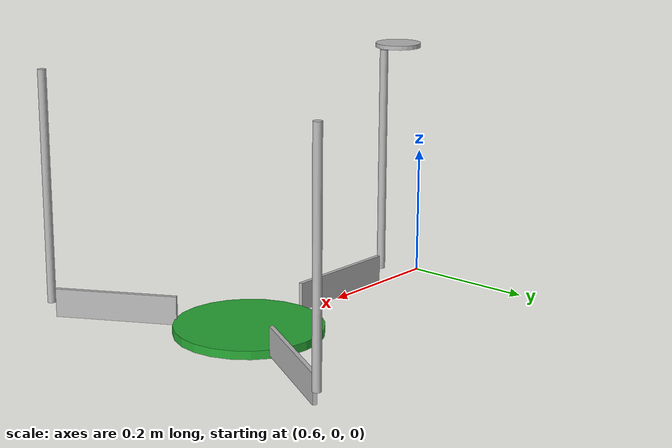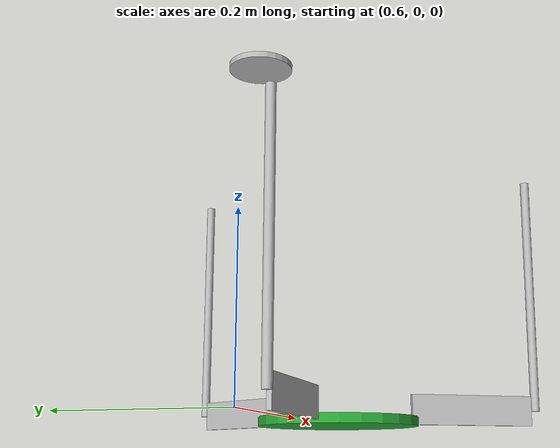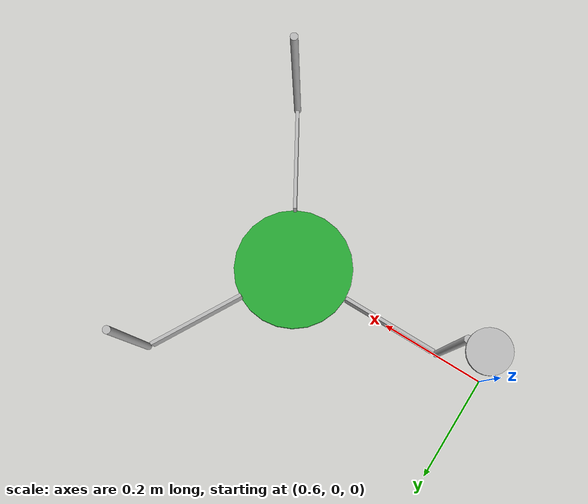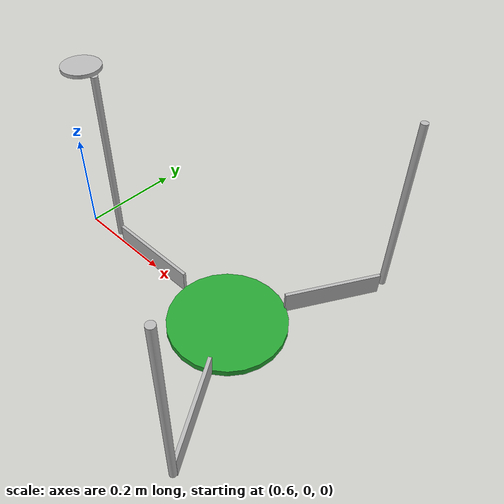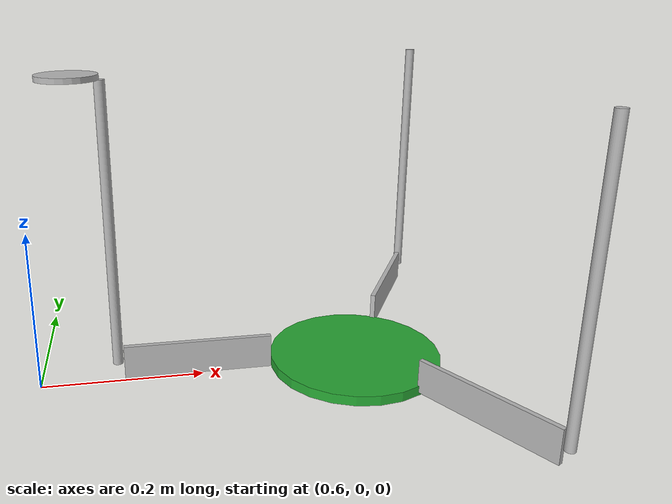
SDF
<sdf version='1.7'>
  <model name='delta'>
    <joint name='world_base_joint' type='fixed'>
      <pose relative_to='__model__'>1 0 0 0 -0 0</pose>
      <parent>world</parent>
      <child>base_link</child>
    </joint>
    <link name='base_link'>
      <pose relative_to='world_base_joint'>0 0 0 0 -0 0</pose>
      <inertial>
        <pose>0 0 0.00635 0 -0 0</pose>
        <mass>12</mass>
        <inertia>
          <ixx>0.0371243</ixx>
          <ixy>0</ixy>
          <ixz>0</ixz>
          <iyy>0.0371243</iyy>
          <iyz>0</iyz>
          <izz>0.073926</izz>
        </inertia>
      </inertial>
      <collision name='base_link_collision'>
        <pose>0 0 0.00635 0 -0 0</pose>
        <geometry>
          <cylinder>
            <length>0.0127</length>
            <radius>0.111</radius>
          </cylinder>
        </geometry>
        <surface>
          <contact>
            <ode/>
          </contact>
          <friction>
            <ode/>
          </friction>
        </surface>
      </collision>
      <visual name='base_link_visual'>
        <pose>0 0 0.00635 0 -0 0</pose>
        <geometry>
          <cylinder>
            <length>0.0127</length>
            <radius>0.111</radius>
          </cylinder>
        </geometry>
        <material>
          <script>
            <name>Gazebo/Green</name>
            <uri>file://media/materials/scripts/gazebo.material</uri>
          </script>
        </material>
      </visual>
    </link>
    <joint name='base_arm_1_joint' type='revolute'>
      <pose relative_to='base_link'>-0.115 0 0.0254 0 -0 0</pose>
      <parent>base_link</parent>
      <child>arm_1_link</child>
      <axis>
        <xyz>0 1 0</xyz>
        <limit>
          <lower>-1.5708</lower>
          <upper>1.5708</upper>
          <effort>100</effort>
          <velocity>100</velocity>
        </limit>
        <dynamics>
          <damping>4</damping>
          <friction>4</friction>
          <spring_reference>0</spring_reference>
          <spring_stiffness>0</spring_stiffness>
        </dynamics>
      </axis>
    </joint>
    <link name='arm_1_link'>
      <pose relative_to='base_arm_1_joint'>0 0 0 0 -0 0</pose>
      <inertial>
        <pose>-0.09 0 0 0 -0 0</pose>
        <mass>6</mass>
        <inertia>
          <ixx>0.000944661</ixx>
          <ixy>0</ixy>
          <ixz>0</ixz>
          <iyy>0.018037</iyy>
          <iyz>0</iyz>
          <izz>0.0171327</izz>
        </inertia>
      </inertial>
      <collision name='arm_1_link_collision'>
        <pose>-0.09 0 0 0 -0 0</pose>
        <geometry>
          <box>
            <size>0.185 0.00635 0.043</size>
          </box>
        </geometry>
      </collision>
      <visual name='arm_1_link_visual'>
        <pose>-0.09 0 0 0 -0 0</pose>
        <geometry>
          <box>
            <size>0.185 0.00635 0.043</size>
          </box>
        </geometry>
      </visual>
    </link>
    <joint name='arm_forearm_1_1_joint' type='revolute'>
      <pose relative_to='arm_1_link'>-0.19 0 0 0 -0 0</pose>
      <parent>arm_1_link</parent>
      <child>virtual_link_1_1</child>
      <axis>
        <xyz>1 0 0</xyz>
        <limit>
          <lower>-0.418879</lower>
          <upper>0.418879</upper>
          <effort>100</effort>
          <velocity>100</velocity>
        </limit>
        <dynamics>
          <damping>0</damping>
          <friction>0.003</friction>
          <spring_reference>0</spring_reference>
          <spring_stiffness>0</spring_stiffness>
        </dynamics>
      </axis>
    </joint>
    <link name='virtual_link_1_1'>
      <pose relative_to='arm_forearm_1_1_joint'>0 0 0 0 -0 0</pose>
      <inertial>
        <pose>0 0 0 0 -0 0</pose>
        <mass>0.1</mass>
        <inertia>
          <ixx>1.66667e-06</ixx>
          <ixy>0</ixy>
          <ixz>0</ixz>
          <iyy>1.66667e-06</iyy>
          <iyz>0</iyz>
          <izz>1.66667e-06</izz>
        </inertia>
      </inertial>
    </link>
    <joint name='arm_forearm_1_2_joint' type='revolute'>
      <pose relative_to='virtual_link_1_1'>0 0 0 0 -0 0</pose>
      <parent>virtual_link_1_1</parent>
      <child>virtual_link_1_2</child>
      <axis>
        <xyz>0 1 0</xyz>
        <limit>
          <lower>-3.14159</lower>
          <upper>3.14159</upper>
          <effort>100</effort>
          <velocity>100</velocity>
        </limit>
        <dynamics>
          <damping>0</damping>
          <friction>0.003</friction>
          <spring_reference>0</spring_reference>
          <spring_stiffness>0</spring_stiffness>
        </dynamics>
      </axis>
    </joint>
    <link name='virtual_link_1_2'>
      <pose relative_to='arm_forearm_1_2_joint'>0 0 0 0 -0 0</pose>
      <inertial>
        <pose>0 0 0 0 -0 0</pose>
        <mass>0.1</mass>
        <inertia>
          <ixx>1.66667e-06</ixx>
          <ixy>0</ixy>
          <ixz>0</ixz>
          <iyy>1.66667e-06</iyy>
          <iyz>0</iyz>
          <izz>1.66667e-06</izz>
        </inertia>
      </inertial>
    </link>
    <joint name='arm_forearm_1_3_joint' type='revolute'>
      <pose relative_to='virtual_link_1_2'>0 0 0 0 -0 0</pose>
      <parent>virtual_link_1_2</parent>
      <child>forearm_1_link</child>
      <axis>
        <xyz>0 0 1</xyz>
        <limit>
          <lower>-0.418879</lower>
          <upper>0.418879</upper>
          <effort>100</effort>
          <velocity>100</velocity>
        </limit>
        <dynamics>
          <damping>0</damping>
          <friction>0.003</friction>
          <spring_reference>0</spring_reference>
          <spring_stiffness>0</spring_stiffness>
        </dynamics>
      </axis>
    </joint>
    <link name='forearm_1_link'>
      <pose relative_to='arm_forearm_1_3_joint'>0 0 0 0 -0 0</pose>
      <inertial>
        <pose>0 0 0 0 -0 0</pose>
        <mass>4</mass>
        <inertia>
          <ixx>0.122513</ixx>
          <ixy>0</ixy>
          <ixz>0</ixz>
          <iyy>0.122513</iyy>
          <iyz>0</iyz>
          <izz>0.245</izz>
        </inertia>
      </inertial>
      <collision name='forearm_1_link_collision'>
        <pose>0 0 0.175 0 -0 0</pose>
        <geometry>
          <cylinder>
            <length>0.35</length>
            <radius>0.00635</radius>
          </cylinder>
        </geometry>
      </collision>
      <visual name='forearm_1_link_visual'>
        <pose>0 0 0.175 0 -0 0</pose>
        <geometry>
          <cylinder>
            <length>0.35</length>
            <radius>0.00635</radius>
          </cylinder>
        </geometry>
      </visual>
    </link>
    <joint name='arm_forearm_1_4_joint' type='revolute'>
      <pose relative_to='forearm_1_link'>0 0 0.35635 0 -0 0</pose>
      <parent>forearm_1_link</parent>
      <child>virtual_link_1_4</child>
      <axis>
        <xyz>1 0 0</xyz>
        <limit>
          <lower>-0.418879</lower>
          <upper>0.418879</upper>
          <effort>100</effort>
          <velocity>100</velocity>
        </limit>
        <dynamics>
          <spring_reference>0</spring_reference>
          <spring_stiffness>0</spring_stiffness>
        </dynamics>
      </axis>
    </joint>
    <link name='virtual_link_1_4'>
      <pose relative_to='arm_forearm_1_4_joint'>0 0 0 0 -0 0</pose>
      <inertial>
        <pose>0 0 0 0 -0 0</pose>
        <mass>0.1</mass>
        <inertia>
          <ixx>1.66667e-06</ixx>
          <ixy>0</ixy>
          <ixz>0</ixz>
          <iyy>1.66667e-06</iyy>
          <iyz>0</iyz>
          <izz>1.66667e-06</izz>
        </inertia>
      </inertial>
    </link>
    <joint name='arm_forearm_1_5_joint' type='revolute'>
      <pose relative_to='virtual_link_1_4'>0 0 0 0 -0 0</pose>
      <parent>virtual_link_1_4</parent>
      <child>virtual_link_1_5</child>
      <axis>
        <xyz>0 1 0</xyz>
        <limit>
          <lower>-3.14159</lower>
          <upper>3.14159</upper>
          <effort>100</effort>
          <velocity>100</velocity>
        </limit>
        <dynamics>
          <spring_reference>0</spring_reference>
          <spring_stiffness>0</spring_stiffness>
        </dynamics>
      </axis>
    </joint>
    <link name='virtual_link_1_5'>
      <pose relative_to='arm_forearm_1_5_joint'>0 0 0 0 -0 0</pose>
      <inertial>
        <pose>0 0 0 0 -0 0</pose>
        <mass>0.1</mass>
        <inertia>
          <ixx>1.66667e-06</ixx>
          <ixy>0</ixy>
          <ixz>0</ixz>
          <iyy>1.66667e-06</iyy>
          <iyz>0</iyz>
          <izz>1.66667e-06</izz>
        </inertia>
      </inertial>
    </link>
    <joint name='arm_forearm_1_6_joint' type='revolute'>
      <pose relative_to='virtual_link_1_5'>-0.035 0 0 0 -0 0</pose>
      <parent>virtual_link_1_5</parent>
      <child>mobile_platform</child>
      <axis>
        <xyz>0 0 1</xyz>
        <limit>
          <lower>-0.418879</lower>
          <upper>0.418879</upper>
          <effort>100</effort>
          <velocity>100</velocity>
        </limit>
        <dynamics>
          <spring_reference>0</spring_reference>
          <spring_stiffness>0</spring_stiffness>
        </dynamics>
      </axis>
    </joint>
    <link name='mobile_platform'>
      <pose relative_to='arm_forearm_1_6_joint'>0 0 0 0 -0 0</pose>
      <inertial>
        <pose>0 0 -0.003175 0 -0 0</pose>
        <mass>4</mass>
        <inertia>
          <ixx>0.00123844</ixx>
          <ixy>0</ixy>
          <ixz>0</ixz>
          <iyy>0.00123844</iyy>
          <iyz>0</iyz>
          <izz>0.00245</izz>
        </inertia>
      </inertial>
      <collision name='mobile_platform_collision'>
        <pose>0 0 -0.003175 0 -0 0</pose>
        <geometry>
          <cylinder>
            <length>0.00635</length>
            <radius>0.035</radius>
          </cylinder>
        </geometry>
      </collision>
      <visual name='mobile_platform_visual'>
        <pose>0 0 -0.003175 0 -0 0</pose>
        <geometry>
          <cylinder>
            <length>0.00635</length>
            <radius>0.035</radius>
          </cylinder>
        </geometry>
      </visual>
    </link>
    <joint name='base_arm_2_joint' type='revolute'>
      <pose relative_to='base_link'>0.055 0.096 0.0254 0 0 -2.0944</pose>
      <parent>base_link</parent>
      <child>arm_2_link</child>
      <axis>
        <xyz>0 1 0</xyz>
        <limit>
          <lower>-1.5708</lower>
          <upper>1.5708</upper>
          <effort>100</effort>
          <velocity>100</velocity>
        </limit>
        <dynamics>
          <damping>4</damping>
          <friction>4</friction>
          <spring_reference>0</spring_reference>
          <spring_stiffness>0</spring_stiffness>
        </dynamics>
      </axis>
    </joint>
    <link name='arm_2_link'>
      <pose relative_to='base_arm_2_joint'>0 0 0 0 -0 0</pose>
      <inertial>
        <pose>-0.09 0 0 0 -0 0</pose>
        <mass>6</mass>
        <inertia>
          <ixx>0.000944661</ixx>
          <ixy>0</ixy>
          <ixz>0</ixz>
          <iyy>0.018037</iyy>
          <iyz>0</iyz>
          <izz>0.0171327</izz>
        </inertia>
      </inertial>
      <collision name='arm_2_link_collision'>
        <pose>-0.09 0 0 0 -0 0</pose>
        <geometry>
          <box>
            <size>0.185 0.00635 0.043</size>
          </box>
        </geometry>
      </collision>
      <visual name='arm_2_link_visual'>
        <pose>-0.09 0 0 0 -0 0</pose>
        <geometry>
          <box>
            <size>0.185 0.00635 0.043</size>
          </box>
        </geometry>
      </visual>
    </link>
    <joint name='arm_forearm_2_1_joint' type='revolute'>
      <pose relative_to='arm_2_link'>-0.19 0 0 0 -0 0</pose>
      <parent>arm_2_link</parent>
      <child>virtual_link_2_1</child>
      <axis>
        <xyz>1 0 0</xyz>
        <limit>
          <lower>-0.418879</lower>
          <upper>0.418879</upper>
          <effort>100</effort>
          <velocity>100</velocity>
        </limit>
        <dynamics>
          <spring_reference>0</spring_reference>
          <spring_stiffness>0</spring_stiffness>
        </dynamics>
      </axis>
    </joint>
    <link name='virtual_link_2_1'>
      <pose relative_to='arm_forearm_2_1_joint'>0 0 0 0 -0 0</pose>
      <inertial>
        <pose>0 0 0 0 -0 0</pose>
        <mass>0.1</mass>
        <inertia>
          <ixx>1.66667e-06</ixx>
          <ixy>0</ixy>
          <ixz>0</ixz>
          <iyy>1.66667e-06</iyy>
          <iyz>0</iyz>
          <izz>1.66667e-06</izz>
        </inertia>
      </inertial>
    </link>
    <joint name='arm_forearm_2_2_joint' type='revolute'>
      <pose relative_to='virtual_link_2_1'>0 0 0 0 -0 0</pose>
      <parent>virtual_link_2_1</parent>
      <child>virtual_link_2_2</child>
      <axis>
        <xyz>0 1 0</xyz>
        <limit>
          <lower>-3.14159</lower>
          <upper>3.14159</upper>
          <effort>100</effort>
          <velocity>100</velocity>
        </limit>
        <dynamics>
          <spring_reference>0</spring_reference>
          <spring_stiffness>0</spring_stiffness>
        </dynamics>
      </axis>
    </joint>
    <link name='virtual_link_2_2'>
      <pose relative_to='arm_forearm_2_2_joint'>0 0 0 0 -0 0</pose>
      <inertial>
        <pose>0 0 0 0 -0 0</pose>
        <mass>0.1</mass>
        <inertia>
          <ixx>1.66667e-06</ixx>
          <ixy>0</ixy>
          <ixz>0</ixz>
          <iyy>1.66667e-06</iyy>
          <iyz>0</iyz>
          <izz>1.66667e-06</izz>
        </inertia>
      </inertial>
    </link>
    <joint name='arm_forearm_2_3_joint' type='revolute'>
      <pose relative_to='virtual_link_2_2'>0 0 0 0 -0 0</pose>
      <parent>virtual_link_2_2</parent>
      <child>forearm_2_link</child>
      <axis>
        <xyz>0 0 1</xyz>
        <limit>
          <lower>-0.418879</lower>
          <upper>0.418879</upper>
          <effort>100</effort>
          <velocity>100</velocity>
        </limit>
        <dynamics>
          <spring_reference>0</spring_reference>
          <spring_stiffness>0</spring_stiffness>
        </dynamics>
      </axis>
    </joint>
    <link name='forearm_2_link'>
      <pose relative_to='arm_forearm_2_3_joint'>0 0 0 0 -0 0</pose>
      <inertial>
        <pose>0 0 0 0 -0 0</pose>
        <mass>4</mass>
        <inertia>
          <ixx>0.122513</ixx>
          <ixy>0</ixy>
          <ixz>0</ixz>
          <iyy>0.122513</iyy>
          <iyz>0</iyz>
          <izz>0.245</izz>
        </inertia>
      </inertial>
      <collision name='forearm_2_link_collision'>
        <pose>0 0 0.175 0 -0 0</pose>
        <geometry>
          <cylinder>
            <length>0.35</length>
            <radius>0.00635</radius>
          </cylinder>
        </geometry>
      </collision>
      <visual name='forearm_2_link_visual'>
        <pose>0 0 0.175 0 -0 0</pose>
        <geometry>
          <cylinder>
            <length>0.35</length>
            <radius>0.00635</radius>
          </cylinder>
        </geometry>
      </visual>
    </link>
    <joint name='arm_forearm_2_4_joint' type='revolute'>
      <pose relative_to='forearm_2_link'>0 0 0.35635 0 -0 0</pose>
      <parent>forearm_2_link</parent>
      <child>virtual_link_2_4</child>
      <axis>
        <xyz>1 0 0</xyz>
        <limit>
          <lower>-0.418879</lower>
          <upper>0.418879</upper>
          <effort>100</effort>
          <velocity>100</velocity>
        </limit>
        <dynamics>
          <spring_reference>0</spring_reference>
          <spring_stiffness>0</spring_stiffness>
        </dynamics>
      </axis>
    </joint>
    <link name='virtual_link_2_4'>
      <pose relative_to='arm_forearm_2_4_joint'>0 0 0 0 -0 0</pose>
      <inertial>
        <pose>0 0 0 0 -0 0</pose>
        <mass>0.1</mass>
        <inertia>
          <ixx>1.66667e-06</ixx>
          <ixy>0</ixy>
          <ixz>0</ixz>
          <iyy>1.66667e-06</iyy>
          <iyz>0</iyz>
          <izz>1.66667e-06</izz>
        </inertia>
      </inertial>
    </link>
    <joint name='arm_forearm_2_5_joint' type='revolute'>
      <pose relative_to='virtual_link_2_4'>0 0 0 0 -0 0</pose>
      <parent>virtual_link_2_4</parent>
      <child>virtual_link_2_5</child>
      <axis>
        <xyz>0 1 0</xyz>
        <limit>
          <lower>-3.14159</lower>
          <upper>3.14159</upper>
          <effort>100</effort>
          <velocity>100</velocity>
        </limit>
        <dynamics>
          <spring_reference>0</spring_reference>
          <spring_stiffness>0</spring_stiffness>
        </dynamics>
      </axis>
    </joint>
    <link name='virtual_link_2_5'>
      <pose relative_to='arm_forearm_2_5_joint'>0 0 0 0 -0 0</pose>
      <inertial>
        <pose>0 0 0 0 -0 0</pose>
        <mass>0.1</mass>
        <inertia>
          <ixx>1.66667e-06</ixx>
          <ixy>0</ixy>
          <ixz>0</ixz>
          <iyy>1.66667e-06</iyy>
          <iyz>0</iyz>
          <izz>1.66667e-06</izz>
        </inertia>
      </inertial>
    </link>
    <joint name='base_arm_3_joint' type='revolute'>
      <pose relative_to='base_link'>0.055 -0.096 0.0254 0 -0 2.0944</pose>
      <parent>base_link</parent>
      <child>arm_3_link</child>
      <axis>
        <xyz>0 1 0</xyz>
        <limit>
          <lower>-1.5708</lower>
          <upper>1.5708</upper>
          <effort>100</effort>
          <velocity>100</velocity>
        </limit>
        <dynamics>
          <damping>4</damping>
          <friction>4</friction>
          <spring_reference>0</spring_reference>
          <spring_stiffness>0</spring_stiffness>
        </dynamics>
      </axis>
    </joint>
    <link name='arm_3_link'>
      <pose relative_to='base_arm_3_joint'>0 0 0 0 -0 0</pose>
      <inertial>
        <pose>-0.09 0 0 0 -0 0</pose>
        <mass>6</mass>
        <inertia>
          <ixx>0.000944661</ixx>
          <ixy>0</ixy>
          <ixz>0</ixz>
          <iyy>0.018037</iyy>
          <iyz>0</iyz>
          <izz>0.0171327</izz>
        </inertia>
      </inertial>
      <collision name='arm_3_link_collision'>
        <pose>-0.09 0 0 0 -0 0</pose>
        <geometry>
          <box>
            <size>0.185 0.00635 0.043</size>
          </box>
        </geometry>
      </collision>
      <visual name='arm_3_link_visual'>
        <pose>-0.09 0 0 0 -0 0</pose>
        <geometry>
          <box>
            <size>0.185 0.00635 0.043</size>
          </box>
        </geometry>
      </visual>
    </link>
    <joint name='arm_forearm_3_1_joint' type='revolute'>
      <pose relative_to='arm_3_link'>-0.19 0 0 0 -0 0</pose>
      <parent>arm_3_link</parent>
      <child>virtual_link_3_1</child>
      <axis>
        <xyz>1 0 0</xyz>
        <limit>
          <lower>-0.418879</lower>
          <upper>0.418879</upper>
          <effort>100</effort>
          <velocity>100</velocity>
        </limit>
        <dynamics>
          <spring_reference>0</spring_reference>
          <spring_stiffness>0</spring_stiffness>
        </dynamics>
      </axis>
    </joint>
    <link name='virtual_link_3_1'>
      <pose relative_to='arm_forearm_3_1_joint'>0 0 0 0 -0 0</pose>
      <inertial>
        <pose>0 0 0 0 -0 0</pose>
        <mass>0.1</mass>
        <inertia>
          <ixx>1.66667e-06</ixx>
          <ixy>0</ixy>
          <ixz>0</ixz>
          <iyy>1.66667e-06</iyy>
          <iyz>0</iyz>
          <izz>1.66667e-06</izz>
        </inertia>
      </inertial>
    </link>
    <joint name='arm_forearm_3_2_joint' type='revolute'>
      <pose relative_to='virtual_link_3_1'>0 0 0 0 -0 0</pose>
      <parent>virtual_link_3_1</parent>
      <child>virtual_link_3_2</child>
      <axis>
        <xyz>0 1 0</xyz>
        <limit>
          <lower>-3.14159</lower>
          <upper>3.14159</upper>
          <effort>100</effort>
          <velocity>100</velocity>
        </limit>
        <dynamics>
          <spring_reference>0</spring_reference>
          <spring_stiffness>0</spring_stiffness>
        </dynamics>
      </axis>
    </joint>
    <link name='virtual_link_3_2'>
      <pose relative_to='arm_forearm_3_2_joint'>0 0 0 0 -0 0</pose>
      <inertial>
        <pose>0 0 0 0 -0 0</pose>
        <mass>0.1</mass>
        <inertia>
          <ixx>1.66667e-06</ixx>
          <ixy>0</ixy>
          <ixz>0</ixz>
          <iyy>1.66667e-06</iyy>
          <iyz>0</iyz>
          <izz>1.66667e-06</izz>
        </inertia>
      </inertial>
    </link>
    <joint name='arm_forearm_3_3_joint' type='revolute'>
      <pose relative_to='virtual_link_3_2'>0 0 0 0 -0 0</pose>
      <parent>virtual_link_3_2</parent>
      <child>forearm_3_link</child>
      <axis>
        <xyz>0 0 1</xyz>
        <limit>
          <lower>-0.418879</lower>
          <upper>0.418879</upper>
          <effort>100</effort>
          <velocity>100</velocity>
        </limit>
        <dynamics>
          <spring_reference>0</spring_reference>
          <spring_stiffness>0</spring_stiffness>
        </dynamics>
      </axis>
    </joint>
    <link name='forearm_3_link'>
      <pose relative_to='arm_forearm_3_3_joint'>0 0 0 0 -0 0</pose>
      <inertial>
        <pose>0 0 0 0 -0 0</pose>
        <mass>4</mass>
        <inertia>
          <ixx>0.122513</ixx>
          <ixy>0</ixy>
          <ixz>0</ixz>
          <iyy>0.122513</iyy>
          <iyz>0</iyz>
          <izz>0.245</izz>
        </inertia>
      </inertial>
      <collision name='forearm_3_link_collision'>
        <pose>0 0 0.175 0 -0 0</pose>
        <geometry>
          <cylinder>
            <length>0.35</length>
            <radius>0.00635</radius>
          </cylinder>
        </geometry>
      </collision>
      <visual name='forearm_3_link_visual'>
        <pose>0 0 0.175 0 -0 0</pose>
        <geometry>
          <cylinder>
            <length>0.35</length>
            <radius>0.00635</radius>
          </cylinder>
        </geometry>
      </visual>
    </link>
    <joint name='arm_forearm_2_6_joint' type='revolute'>
      <parent>__default__</parent>
      <child>__default__</child>
      <axis>
        <xyz>0 0 1</xyz>
        <limit>
          <lower>-1e+16</lower>
          <upper>1e+16</upper>
        </limit>
      </axis>
      <origin xyz='-0.0175 0.03031 0.0'/>
      <limit effort='100.0' lower='-0.41887902047863906' upper='0.41887902047863906' velocity='100.0'/>
    </joint>
    <plugin name='gazebo_ros_joint_state_publisher' filename='libgazebo_ros_joint_state_publisher.so'>
      <update_rate>20</update_rate>
      <joint_name>base_arm_1_joint</joint_name>
      <joint_name>arm_forearm_1_1_joint</joint_name>
      <joint_name>arm_forearm_1_2_joint</joint_name>
      <joint_name>arm_forearm_1_3_joint</joint_name>
      <joint_name>arm_forearm_1_4_joint</joint_name>
      <joint_name>arm_forearm_1_5_joint</joint_name>
      <joint_name>arm_forearm_1_6_joint</joint_name>
      <joint_name>base_arm_2_joint</joint_name>
      <joint_name>arm_forearm_2_1_joint</joint_name>
      <joint_name>arm_forearm_2_2_joint</joint_name>
      <joint_name>arm_forearm_2_3_joint</joint_name>
      <joint_name>arm_forearm_2_4_joint</joint_name>
      <joint_name>arm_forearm_2_5_joint</joint_name>
      <joint_name>arm_forearm_2_6_joint</joint_name>
      <joint_name>base_arm_3_joint</joint_name>
      <joint_name>arm_forearm_3_1_joint</joint_name>
      <joint_name>arm_forearm_3_2_joint</joint_name>
      <joint_name>arm_forearm_3_3_joint</joint_name>
    </plugin>
    <static>0</static>
    <plugin name='gazebo_ros_joint_pose_trajectory' filename='libgazebo_ros_joint_pose_trajectory.so'>
      <update_rate>20</update_rate>
    </plugin>
  </model>
</sdf>
